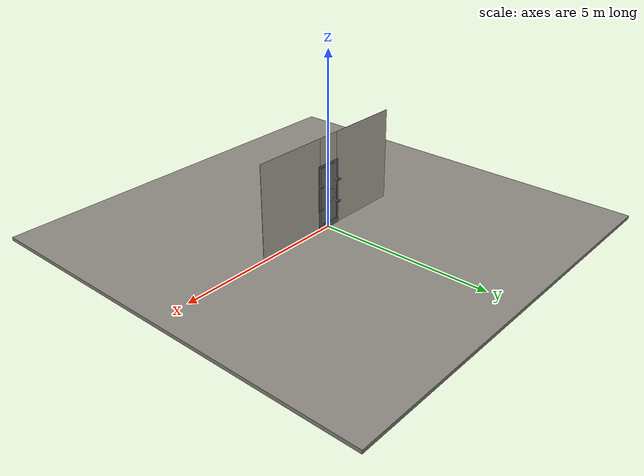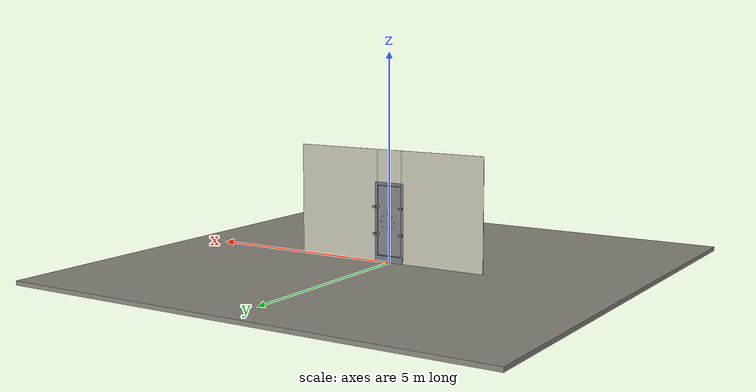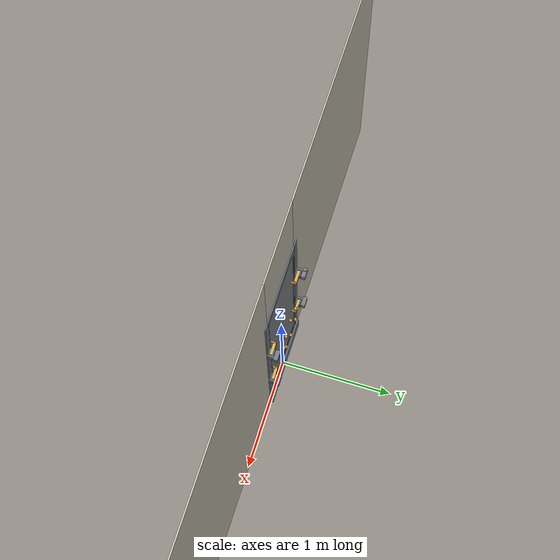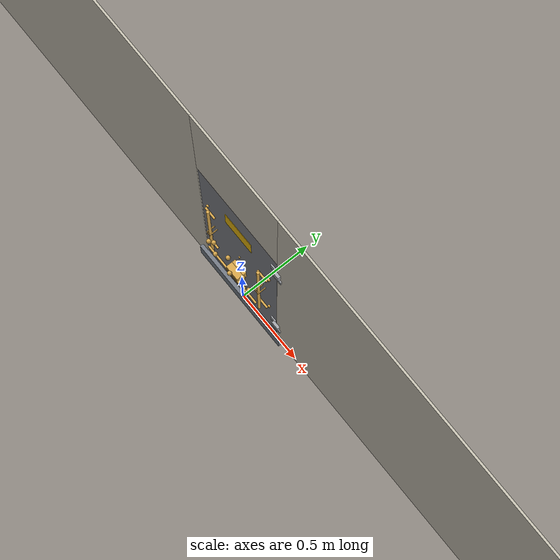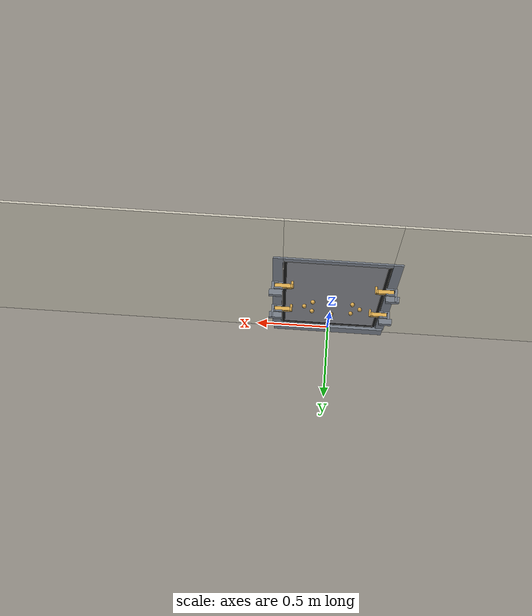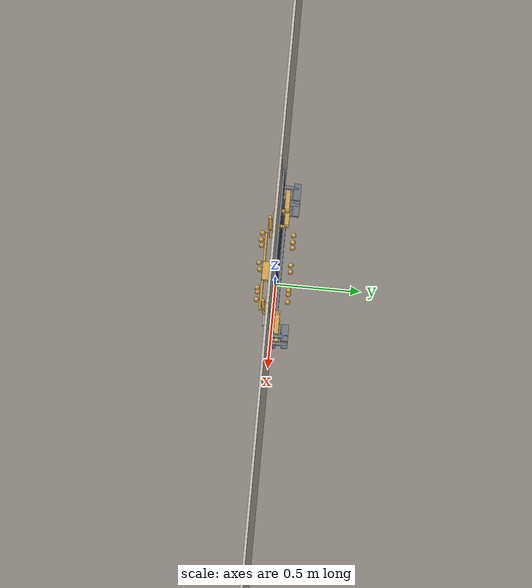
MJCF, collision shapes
<?xml version="1.0" ?>
<mujoco model="db0729_ship_watertight_full">
  <compiler angle="radian" meshdir="../../hardware" texturedir="../../textures" autolimits="true" inertiafromgeom="false"/>
  <option timestep="0.002" integrator="implicitfast" cone="elliptic" impratio="10" noslip_iterations="3">
    <flag multiccd="enable"/>
  </option>
  <size memory="16M"/>
  <default>
    <geom condim="4" solref="0.005 1" solimp="0.95 0.99 0.001"/>
    <joint solreflimit="0.005 1" solimplimit="0.95 0.99 0.001"/>
    <tendon solreflimit="0.005 1"/>
    <equality solref="0.002 1"/>
  </default>
  <visual>
    <headlight ambient="0.4 0.4 0.4" diffuse="0.7 0.7 0.7" specular="0.2 0.2 0.2"/>
    <quality shadowsize="4096"/>
    <map znear="0.01" zfar="60"/>
  </visual>
  <asset>
    <mesh name="hinge_aa6f1f959a" file="hinge_aa6f1f959a.obj"/>
    <mesh name="hinge_jamb_5a3d6f5c54" file="hinge_jamb_5a3d6f5c54.obj"/>
    <mesh name="wheel_9768cee49b" file="wheel_9768cee49b.obj"/>
    <material name="mat_floor" rgba="0.55 0.53 0.5 1" specular="0.2" shininess="0.15" reflectance="0"/>
    <material name="mat_wall" rgba="0.78 0.76 0.7 1" specular="0.2" shininess="0.1" reflectance="0"/>
    <material name="mat_leaf" rgba="0.5 0.51 0.53 1" specular="0.23" shininess="0.45" reflectance="0.02"/>
    <material name="mat_frame" rgba="0.45 0.48 0.52 1" specular="0.32" shininess="0.6" reflectance="0.08"/>
    <material name="mat_gasket" rgba="0.08 0.08 0.08 1" specular="0.2" shininess="0.1" reflectance="0"/>
    <material name="mat_op_brass" rgba="0.85 0.66 0.3 1" specular="0.8" shininess="0.75" reflectance="0.4"/>
    <material name="mat_trim" rgba="0.85 0.66 0.3 1" specular="0.8" shininess="0.75" reflectance="0.4"/>
    <material name="mat_hinge" rgba="0.65 0.66 0.68 1" specular="0.74" shininess="0.5" reflectance="0.36"/>
    <material name="mat_placard" rgba="0.95 0.75 0.05 1" specular="0.2" shininess="0.5" reflectance="0"/>
    <texture name="skybox" type="skybox" builtin="gradient" rgb1="0.6 0.7 0.85" rgb2="0.9 0.92 0.95" width="256" height="256"/>
  </asset>
  <worldbody>
    <light name="sun" pos="1.5 -2.5 4" dir="-0.3 0.5 -0.8" directional="true" diffuse="0.8 0.8 0.8" specular="0.3 0.3 0.3" castshadow="true"/>
    <light name="fill" pos="-1.5 2.5 3" dir="0.3 -0.5 -0.7" directional="true" diffuse="0.35 0.35 0.4" castshadow="false"/>
    <camera name="robot_view" pos="0 -2.228125 1.553875" xyaxes="1 0 0 0 0.26963 0.962964" fovy="52"/>
    <camera name="far_view" pos="0 2.228125 1.553875" xyaxes="-1 0 0 0 -0.26963 0.962964" fovy="52"/>
    <camera name="iso" pos="-1.693375 -1.871625 1.910375" xyaxes="0.741536 -0.670913 0 0.242917 0.268487 0.932151" fovy="46"/>
    <camera name="detail_handle" pos="0.181 -0.884 1.46" xyaxes="0.97561 0.219512 0 -0.070934 0.315262 0.94635" fovy="38"/>
    <geom name="floor" type="box" size="6 6 0.05" pos="0 0 -0.05" material="mat_floor" group="0" contype="1" conaffinity="1" friction="0.8 0.005 0.0001" density="2400"/>
    <geom name="wall_left" type="box" size="1.085 0.006 1.35" pos="-1.415 0 1.35" material="mat_wall" group="0" contype="1" conaffinity="1" friction="0.6 0.005 0.0001" density="800"/>
    <geom name="wall_right" type="box" size="1.085 0.006 1.35" pos="1.415 0 1.35" material="mat_wall" group="0" contype="1" conaffinity="1" friction="0.6 0.005 0.0001" density="800"/>
    <geom name="wall_header" type="box" size="0.33 0.006 0.42" pos="0 0 2.28" material="mat_wall" group="0" contype="1" conaffinity="1" friction="0.6 0.005 0.0001" density="800"/>
    <geom name="flange_l" type="box" size="0.03 0.006 0.915" pos="-0.36 0.01 1.005" material="mat_frame" group="0" contype="1" conaffinity="1" friction="0.6 0.005 0.0001" solref="0.02 1" density="7850"/>
    <geom name="flange_r" type="box" size="0.03 0.006 0.915" pos="0.36 0.01 1.005" material="mat_frame" group="0" contype="1" conaffinity="1" friction="0.6 0.005 0.0001" solref="0.02 1" density="7850"/>
    <geom name="flange_t" type="box" size="0.33 0.006 0.03" pos="0 0.01 1.89" material="mat_frame" group="0" contype="1" conaffinity="1" friction="0.6 0.005 0.0001" solref="0.02 1" density="7850"/>
    <geom name="flange_b" type="box" size="0.33 0.006 0.03" pos="0 0.01 0.12" material="mat_frame" group="0" contype="1" conaffinity="1" friction="0.6 0.005 0.0001" solref="0.02 1" density="7850"/>
    <geom name="coaming" type="box" size="0.38 0.03 0.075" pos="0 0 0.075" material="mat_frame" group="0" contype="1" conaffinity="1" friction="0.6 0.005 0.0001" density="7850"/>
    <geom name="cleat_0" type="box" size="0.0275 0.005 0.025" pos="-0.3515 0.0205 0.675" material="mat_frame" group="0" contype="1" conaffinity="1" friction="0.6 0.005 0.0001" density="7850"/>
    <geom name="cleat_0_outer" type="box" size="0.0275 0.005 0.025" pos="-0.3515 0.0555 0.675" material="mat_frame" group="0" contype="1" conaffinity="1" friction="0.6 0.005 0.0001" density="7850"/>
    <geom name="cleat_0_base" type="box" size="0.0425 0.018 0.025" pos="-0.3665 0.084 0.675" material="mat_frame" group="0" contype="1" conaffinity="1" friction="0.6 0.005 0.0001" density="7850"/>
    <geom name="cleat_0_bridge" type="box" size="0.008 0.041 0.025" pos="-0.387 0.057 0.675" material="mat_frame" group="0" contype="1" conaffinity="1" friction="0.6 0.005 0.0001" density="7850"/>
    <geom name="cleat_1" type="box" size="0.0275 0.005 0.025" pos="0.3535 0.0205 0.675" material="mat_frame" group="0" contype="1" conaffinity="1" friction="0.6 0.005 0.0001" density="7850"/>
    <geom name="cleat_1_outer" type="box" size="0.0275 0.005 0.025" pos="0.3535 0.0555 0.675" material="mat_frame" group="0" contype="1" conaffinity="1" friction="0.6 0.005 0.0001" density="7850"/>
    <geom name="cleat_1_base" type="box" size="0.0425 0.018 0.025" pos="0.3685 0.084 0.675" material="mat_frame" group="0" contype="1" conaffinity="1" friction="0.6 0.005 0.0001" density="7850"/>
    <geom name="cleat_1_bridge" type="box" size="0.008 0.041 0.025" pos="0.389 0.057 0.675" material="mat_frame" group="0" contype="1" conaffinity="1" friction="0.6 0.005 0.0001" density="7850"/>
    <geom name="cleat_2" type="box" size="0.0275 0.005 0.025" pos="-0.3515 0.0205 1.325" material="mat_frame" group="0" contype="1" conaffinity="1" friction="0.6 0.005 0.0001" density="7850"/>
    <geom name="cleat_2_outer" type="box" size="0.0275 0.005 0.025" pos="-0.3515 0.0555 1.325" material="mat_frame" group="0" contype="1" conaffinity="1" friction="0.6 0.005 0.0001" density="7850"/>
    <geom name="cleat_2_base" type="box" size="0.0425 0.018 0.025" pos="-0.3665 0.084 1.325" material="mat_frame" group="0" contype="1" conaffinity="1" friction="0.6 0.005 0.0001" density="7850"/>
    <geom name="cleat_2_bridge" type="box" size="0.008 0.041 0.025" pos="-0.387 0.057 1.325" material="mat_frame" group="0" contype="1" conaffinity="1" friction="0.6 0.005 0.0001" density="7850"/>
    <geom name="cleat_3" type="box" size="0.0275 0.005 0.025" pos="0.3535 0.0205 1.325" material="mat_frame" group="0" contype="1" conaffinity="1" friction="0.6 0.005 0.0001" density="7850"/>
    <geom name="cleat_3_outer" type="box" size="0.0275 0.005 0.025" pos="0.3535 0.0555 1.325" material="mat_frame" group="0" contype="1" conaffinity="1" friction="0.6 0.005 0.0001" density="7850"/>
    <geom name="cleat_3_base" type="box" size="0.0425 0.018 0.025" pos="0.3685 0.084 1.325" material="mat_frame" group="0" contype="1" conaffinity="1" friction="0.6 0.005 0.0001" density="7850"/>
    <geom name="cleat_3_bridge" type="box" size="0.008 0.041 0.025" pos="0.389 0.057 1.325" material="mat_frame" group="0" contype="1" conaffinity="1" friction="0.6 0.005 0.0001" density="7850"/>
    <geom name="hinge_0_jamb" type="mesh" mesh="hinge_jamb_5a3d6f5c54" pos="0.36 -0.024 0.404" quat="0 0 1 0" material="mat_hinge" group="1" contype="0" conaffinity="0" density="7850"/>
    <geom name="hinge_0_jamb_lug" type="box" size="0.01 0.004 0.02" pos="0.36 -0.01 0.317" material="mat_hinge" group="1" contype="0" conaffinity="0" density="7850"/>
    <geom name="hinge_1_jamb" type="mesh" mesh="hinge_jamb_5a3d6f5c54" pos="0.36 -0.024 1.674" quat="0 0 1 0" material="mat_hinge" group="1" contype="0" conaffinity="0" density="7850"/>
    <geom name="hinge_1_jamb_lug" type="box" size="0.01 0.004 0.02" pos="0.36 -0.01 1.587" material="mat_hinge" group="1" contype="0" conaffinity="0" density="7850"/>
    <site name="approach_point" pos="0 -1.5 0" quat="1 0 0 0" size="0.05" rgba="0.2 0.9 0.2 0.5" group="4"/>
    <site name="goal_point" pos="0 1.5 0" quat="1 0 0 0" size="0.05" rgba="0.2 0.9 0.2 0.5" group="4"/>
    <site name="door_plane_center" pos="0 0 1.005" quat="1 0 0 0" size="0.02" rgba="0.2 0.9 0.2 0.5" group="4"/>
    <body name="leaf" pos="0.33 0 0.15">
      <inertial pos="-0.316165 -0.003467 0.838294" mass="76.437703" quat="-0.498035 -0.499893 -0.498779 0.503277" diaginertia="2.794855382 18.050878289 20.823154515"/>
      <joint name="leaf_hinge" type="hinge" axis="0 0 1" pos="0.03 -0.024 0" limited="true" range="0 2.356194" solreflimit="0.02 1" damping="0.104805" frictionloss="13.65219" armature="0.02"/>
      <geom name="leaf_slab" type="box" size="0.325 0.004 0.85" pos="-0.329 0 0.854" material="mat_leaf" group="0" contype="1" conaffinity="1" friction="0.4 0.005 0.0001" density="1"/>
      <geom name="gasket_l" type="box" size="0.01 0.004 0.84" pos="-0.014 0.008 0.854" material="mat_gasket" group="1" contype="0" conaffinity="0" density="1100"/>
      <geom name="gasket_r" type="box" size="0.01 0.004 0.84" pos="-0.644 0.008 0.854" material="mat_gasket" group="1" contype="0" conaffinity="0" density="1100"/>
      <geom name="gasket_b" type="box" size="0.315 0.004 0.01" pos="-0.329 0.008 0.014" material="mat_gasket" group="1" contype="0" conaffinity="0" density="1100"/>
      <geom name="gasket_t" type="box" size="0.315 0.004 0.01" pos="-0.329 0.008 1.694" material="mat_gasket" group="1" contype="0" conaffinity="0" density="1100"/>
      <geom name="wheel_gearbox_mount" type="box" size="0.05 0.0125 0.045" pos="-0.329 -0.0155 0.59" material="mat_op_brass" group="1" contype="0" conaffinity="0" density="7800"/>
      <geom name="wheel_gearbox" type="box" size="0.05 0.022 0.045" pos="-0.329 -0.049 0.59" material="mat_op_brass" group="1" contype="0" conaffinity="0" density="7800"/>
      <geom name="linkage_rod_r_guide_0_leg_n" type="box" size="0.008 0.002 0.02725" pos="-0.5315 -0.03125 0.85" quat="0.5 0.5 -0.5 0.5" material="mat_op_brass" group="1" contype="0" conaffinity="0" density="7800"/>
      <geom name="linkage_rod_r_guide_0_leg_p" type="box" size="0.008 0.002 0.02725" pos="-0.5565 -0.03125 0.85" quat="0.5 0.5 -0.5 0.5" material="mat_op_brass" group="1" contype="0" conaffinity="0" density="7800"/>
      <geom name="linkage_rod_r_guide_0_bridge" type="box" size="0.008 0.0145 0.002" pos="-0.544 -0.0565 0.85" quat="0.5 0.5 -0.5 0.5" material="mat_op_brass" group="1" contype="0" conaffinity="0" density="7800"/>
      <geom name="linkage_rod_l_guide_0_leg_n" type="box" size="0.008 0.002 0.02725" pos="-0.1015 -0.03125 0.85" quat="0.5 0.5 -0.5 0.5" material="mat_op_brass" group="1" contype="0" conaffinity="0" density="7800"/>
      <geom name="linkage_rod_l_guide_0_leg_p" type="box" size="0.008 0.002 0.02725" pos="-0.1265 -0.03125 0.85" quat="0.5 0.5 -0.5 0.5" material="mat_op_brass" group="1" contype="0" conaffinity="0" density="7800"/>
      <geom name="linkage_rod_l_guide_0_bridge" type="box" size="0.008 0.0145 0.002" pos="-0.114 -0.0565 0.85" quat="0.5 0.5 -0.5 0.5" material="mat_op_brass" group="1" contype="0" conaffinity="0" density="7800"/>
      <geom name="linkage_tube" type="cylinder" size="0.007 0.215" pos="-0.329 -0.066 0.59" quat="0.707107 0 0.707107 0" material="mat_op_brass" group="1" contype="0" conaffinity="0" density="7800"/>
      <geom name="hinge_0" type="mesh" mesh="hinge_aa6f1f959a" pos="0.03 -0.024 0.254" quat="0 0 1 0" material="mat_hinge" group="1" contype="0" conaffinity="0" density="7850"/>
      <geom name="hinge_0_lug_foot" type="box" size="0.02 0.0045 0.03" pos="-0.026 -0.0085 0.287" material="mat_hinge" group="1" contype="0" conaffinity="0" density="7850"/>
      <geom name="hinge_0_lug" type="box" size="0.026 0.0095 0.03" pos="0.01 -0.0205 0.287" material="mat_hinge" group="1" contype="0" conaffinity="0" density="7850"/>
      <geom name="hinge_1" type="mesh" mesh="hinge_aa6f1f959a" pos="0.03 -0.024 1.524" quat="0 0 1 0" material="mat_hinge" group="1" contype="0" conaffinity="0" density="7850"/>
      <geom name="hinge_1_lug_foot" type="box" size="0.02 0.0045 0.03" pos="-0.026 -0.0085 1.557" material="mat_hinge" group="1" contype="0" conaffinity="0" density="7850"/>
      <geom name="hinge_1_lug" type="box" size="0.026 0.0095 0.03" pos="0.01 -0.0205 1.557" material="mat_hinge" group="1" contype="0" conaffinity="0" density="7850"/>
      <geom name="warning_placard" type="box" size="0.11 0.001 0.08" pos="-0.329 -0.005 1.36" material="mat_placard" group="2" contype="0" conaffinity="0" density="1000"/>
      <body name="wheel" pos="-0.329 0 0.85">
        <inertial pos="0 0 0" mass="5.986828" quat="0 0 0.707107 0.707107" diaginertia="0.115516198 0.115516198 0.148211455"/>
        <joint name="wheel_hinge" type="hinge" axis="0 1 0" limited="true" range="0 9.4248" damping="0.5" frictionloss="2" armature="0.01"/>
        <geom name="wheel_spindle" type="cylinder" size="0.006 0.012" pos="0 0 0" quat="0.707107 -0.707107 0 0" material="mat_op_brass" group="1" contype="0" conaffinity="0" density="7850"/>
        <geom name="wheel_wheel_n" type="mesh" mesh="wheel_9768cee49b" pos="0 -0.004 0" quat="0 0 -0.707107 0.707107" material="mat_op_brass" group="1" contype="0" conaffinity="0" density="3000"/>
        <geom name="wheel_wheel_col_0_n" type="sphere" size="0.014" pos="0.18 -0.084 0" material="mat_op_brass" group="0" contype="1" conaffinity="1" friction="0.6 0.005 0.0001" density="3000"/>
        <geom name="wheel_wheel_col_1_n" type="sphere" size="0.014" pos="0.127279 -0.084 0.127279" material="mat_op_brass" group="0" contype="1" conaffinity="1" friction="0.6 0.005 0.0001" density="3000"/>
        <geom name="wheel_wheel_col_2_n" type="sphere" size="0.014" pos="0 -0.084 0.18" material="mat_op_brass" group="0" contype="1" conaffinity="1" friction="0.6 0.005 0.0001" density="3000"/>
        <geom name="wheel_wheel_col_3_n" type="sphere" size="0.014" pos="-0.127279 -0.084 0.127279" material="mat_op_brass" group="0" contype="1" conaffinity="1" friction="0.6 0.005 0.0001" density="3000"/>
        <geom name="wheel_wheel_col_4_n" type="sphere" size="0.014" pos="-0.18 -0.084 0" material="mat_op_brass" group="0" contype="1" conaffinity="1" friction="0.6 0.005 0.0001" density="3000"/>
        <geom name="wheel_wheel_col_5_n" type="sphere" size="0.014" pos="-0.127279 -0.084 -0.127279" material="mat_op_brass" group="0" contype="1" conaffinity="1" friction="0.6 0.005 0.0001" density="3000"/>
        <geom name="wheel_wheel_col_6_n" type="sphere" size="0.014" pos="0 -0.084 -0.18" material="mat_op_brass" group="0" contype="1" conaffinity="1" friction="0.6 0.005 0.0001" density="3000"/>
        <geom name="wheel_wheel_col_7_n" type="sphere" size="0.014" pos="0.127279 -0.084 -0.127279" material="mat_op_brass" group="0" contype="1" conaffinity="1" friction="0.6 0.005 0.0001" density="3000"/>
        <geom name="wheel_wheel_p" type="mesh" mesh="wheel_9768cee49b" pos="0 0.004 0" quat="0 0 0.707107 0.707107" material="mat_op_brass" group="1" contype="0" conaffinity="0" density="3000"/>
        <geom name="wheel_wheel_col_0_p" type="sphere" size="0.014" pos="0.18 0.084 0" material="mat_op_brass" group="0" contype="1" conaffinity="1" friction="0.6 0.005 0.0001" density="3000"/>
        <geom name="wheel_wheel_col_1_p" type="sphere" size="0.014" pos="0.127279 0.084 0.127279" material="mat_op_brass" group="0" contype="1" conaffinity="1" friction="0.6 0.005 0.0001" density="3000"/>
        <geom name="wheel_wheel_col_2_p" type="sphere" size="0.014" pos="0 0.084 0.18" material="mat_op_brass" group="0" contype="1" conaffinity="1" friction="0.6 0.005 0.0001" density="3000"/>
        <geom name="wheel_wheel_col_3_p" type="sphere" size="0.014" pos="-0.127279 0.084 0.127279" material="mat_op_brass" group="0" contype="1" conaffinity="1" friction="0.6 0.005 0.0001" density="3000"/>
        <geom name="wheel_wheel_col_4_p" type="sphere" size="0.014" pos="-0.18 0.084 0" material="mat_op_brass" group="0" contype="1" conaffinity="1" friction="0.6 0.005 0.0001" density="3000"/>
        <geom name="wheel_wheel_col_5_p" type="sphere" size="0.014" pos="-0.127279 0.084 -0.127279" material="mat_op_brass" group="0" contype="1" conaffinity="1" friction="0.6 0.005 0.0001" density="3000"/>
        <geom name="wheel_wheel_col_6_p" type="sphere" size="0.014" pos="0 0.084 -0.18" material="mat_op_brass" group="0" contype="1" conaffinity="1" friction="0.6 0.005 0.0001" density="3000"/>
        <geom name="wheel_wheel_col_7_p" type="sphere" size="0.014" pos="0.127279 0.084 -0.127279" material="mat_op_brass" group="0" contype="1" conaffinity="1" friction="0.6 0.005 0.0001" density="3000"/>
        <site name="wheel_grip_n" pos="0 -0.084 0.18" quat="1 0 0 0" size="0.012" rgba="0.2 0.9 0.2 0.5" group="4"/>
        <site name="wheel_grip_p" pos="0 0.084 0.18" quat="1 0 0 0" size="0.012" rgba="0.2 0.9 0.2 0.5" group="4"/>
      </body>
      <body name="dog_0" pos="-0.594 0 0.525">
        <inertial pos="-0.038649 0.031741 0" mass="1.298802" quat="0.162341 0 0 0.986735" diaginertia="0.000409219 0.002229409 0.002357588"/>
        <joint name="dog_0_hinge" type="hinge" axis="0 -1 0" limited="true" range="0 1.5708" damping="0.5" frictionloss="0.5" armature="0.005"/>
        <geom name="dog_0_rod_crank" type="cylinder" size="0.007 0.04" pos="0.04 -0.024 0" quat="0.707107 0 0.707107 0" material="mat_op_brass" group="1" contype="0" conaffinity="0" density="7800"/>
        <geom name="dog_0_wedge" type="box" size="0.05 0.012 0.02" pos="-0.06 0.038 0" material="mat_op_brass" group="0" contype="1" conaffinity="1" friction="0.6 0.005 0.0001" density="7800"/>
        <geom name="dog_0_shaft" type="cylinder" size="0.008 0.033" pos="0 0.017 0" quat="0.707107 -0.707107 0 0" material="mat_op_brass" group="1" contype="0" conaffinity="0" density="7800"/>
        <geom name="dog_0_crank" type="box" size="0.026 0.012 0.018" pos="-0.026 0.038 0" material="mat_op_brass" group="1" contype="0" conaffinity="0" density="7800"/>
      </body>
      <body name="dog_1" pos="-0.064 0 0.525">
        <inertial pos="0.038649 0.031741 0" mass="1.298802" quat="-0.162341 0 0 0.986735" diaginertia="0.000409219 0.002229409 0.002357588"/>
        <joint name="dog_1_hinge" type="hinge" axis="0 1 0" limited="true" range="0 1.5708" damping="0.5" frictionloss="0.5" armature="0.005"/>
        <geom name="dog_1_rod_crank" type="cylinder" size="0.007 0.04" pos="-0.04 -0.024 0" quat="0.707107 0 0.707107 0" material="mat_op_brass" group="1" contype="0" conaffinity="0" density="7800"/>
        <geom name="dog_1_wedge" type="box" size="0.05 0.012 0.02" pos="0.06 0.038 0" material="mat_op_brass" group="0" contype="1" conaffinity="1" friction="0.6 0.005 0.0001" density="7800"/>
        <geom name="dog_1_shaft" type="cylinder" size="0.008 0.033" pos="0 0.017 0" quat="0.707107 -0.707107 0 0" material="mat_op_brass" group="1" contype="0" conaffinity="0" density="7800"/>
        <geom name="dog_1_crank" type="box" size="0.026 0.012 0.018" pos="0.026 0.038 0" material="mat_op_brass" group="1" contype="0" conaffinity="0" density="7800"/>
      </body>
      <body name="dog_2" pos="-0.594 0 1.175">
        <inertial pos="-0.038649 0.031741 0" mass="1.298802" quat="0.162341 0 0 0.986735" diaginertia="0.000409219 0.002229409 0.002357588"/>
        <joint name="dog_2_hinge" type="hinge" axis="0 -1 0" limited="true" range="0 1.5708" damping="0.5" frictionloss="0.5" armature="0.005"/>
        <geom name="dog_2_rod_crank" type="cylinder" size="0.007 0.04" pos="0.04 -0.024 0" quat="0.707107 0 0.707107 0" material="mat_op_brass" group="1" contype="0" conaffinity="0" density="7800"/>
        <geom name="dog_2_wedge" type="box" size="0.05 0.012 0.02" pos="-0.06 0.038 0" material="mat_op_brass" group="0" contype="1" conaffinity="1" friction="0.6 0.005 0.0001" density="7800"/>
        <geom name="dog_2_shaft" type="cylinder" size="0.008 0.033" pos="0 0.017 0" quat="0.707107 -0.707107 0 0" material="mat_op_brass" group="1" contype="0" conaffinity="0" density="7800"/>
        <geom name="dog_2_crank" type="box" size="0.026 0.012 0.018" pos="-0.026 0.038 0" material="mat_op_brass" group="1" contype="0" conaffinity="0" density="7800"/>
      </body>
      <body name="dog_3" pos="-0.064 0 1.175">
        <inertial pos="0.038649 0.031741 0" mass="1.298802" quat="-0.162341 0 0 0.986735" diaginertia="0.000409219 0.002229409 0.002357588"/>
        <joint name="dog_3_hinge" type="hinge" axis="0 1 0" limited="true" range="0 1.5708" damping="0.5" frictionloss="0.5" armature="0.005"/>
        <geom name="dog_3_rod_crank" type="cylinder" size="0.007 0.04" pos="-0.04 -0.024 0" quat="0.707107 0 0.707107 0" material="mat_op_brass" group="1" contype="0" conaffinity="0" density="7800"/>
        <geom name="dog_3_wedge" type="box" size="0.05 0.012 0.02" pos="0.06 0.038 0" material="mat_op_brass" group="0" contype="1" conaffinity="1" friction="0.6 0.005 0.0001" density="7800"/>
        <geom name="dog_3_shaft" type="cylinder" size="0.008 0.033" pos="0 0.017 0" quat="0.707107 -0.707107 0 0" material="mat_op_brass" group="1" contype="0" conaffinity="0" density="7800"/>
        <geom name="dog_3_crank" type="box" size="0.026 0.012 0.018" pos="0.026 0.038 0" material="mat_op_brass" group="1" contype="0" conaffinity="0" density="7800"/>
      </body>
      <body name="linkage_rod_r" pos="-0.544 0 0">
        <inertial pos="0 -0.044 0.85" mass="1.68713" quat="0.707107 0 0.707107 0" diaginertia="0.000068329 0.10161342 0.10161342"/>
        <joint name="linkage_rod_r_slide" type="slide" axis="0 0 1" limited="true" range="0 0.05" damping="2" frictionloss="0.5" armature="0.05"/>
        <geom name="linkage_rod_r_geom" type="cylinder" size="0.009 0.425" pos="0 -0.044 0.85" material="mat_op_brass" group="1" contype="0" conaffinity="0" density="7800"/>
      </body>
      <body name="linkage_rod_l" pos="-0.114 0 0">
        <inertial pos="0 -0.044 0.85" mass="1.68713" quat="0.707107 0 0.707107 0" diaginertia="0.000068329 0.10161342 0.10161342"/>
        <joint name="linkage_rod_l_slide" type="slide" axis="0 0 1" limited="true" range="0 0.05" damping="2" frictionloss="0.5" armature="0.05"/>
        <geom name="linkage_rod_l_geom" type="cylinder" size="0.009 0.425" pos="0 -0.044 0.85" material="mat_op_brass" group="1" contype="0" conaffinity="0" density="7800"/>
      </body>
    </body>
  </worldbody>
  <equality>
    <joint name="wheel_dog_0" joint1="dog_0_hinge" joint2="wheel_hinge" polycoef="0 0.166667 0 0 0" active="true"/>
    <joint name="wheel_dog_1" joint1="dog_1_hinge" joint2="wheel_hinge" polycoef="0 0.166667 0 0 0" active="true"/>
    <joint name="wheel_dog_2" joint1="dog_2_hinge" joint2="wheel_hinge" polycoef="0 0.166667 0 0 0" active="true"/>
    <joint name="wheel_dog_3" joint1="dog_3_hinge" joint2="wheel_hinge" polycoef="0 0.166667 0 0 0" active="true"/>
    <joint name="wheel_rod_r" joint1="linkage_rod_r_slide" joint2="wheel_hinge" polycoef="0 0.005305 0 0 0" active="true"/>
    <joint name="wheel_rod_l" joint1="linkage_rod_l_slide" joint2="wheel_hinge" polycoef="0 0.005305 0 0 0" active="true"/>
  </equality>
  <sensor>
    <jointpos name="leaf_hinge_pos" joint="leaf_hinge"/>
    <jointvel name="leaf_hinge_vel" joint="leaf_hinge"/>
    <jointpos name="wheel_hinge_pos" joint="wheel_hinge"/>
    <jointvel name="wheel_hinge_vel" joint="wheel_hinge"/>
    <jointpos name="dog_0_hinge_pos" joint="dog_0_hinge"/>
    <jointvel name="dog_0_hinge_vel" joint="dog_0_hinge"/>
    <jointpos name="dog_1_hinge_pos" joint="dog_1_hinge"/>
    <jointvel name="dog_1_hinge_vel" joint="dog_1_hinge"/>
    <jointpos name="dog_2_hinge_pos" joint="dog_2_hinge"/>
    <jointvel name="dog_2_hinge_vel" joint="dog_2_hinge"/>
    <jointpos name="dog_3_hinge_pos" joint="dog_3_hinge"/>
    <jointvel name="dog_3_hinge_vel" joint="dog_3_hinge"/>
  </sensor>
</mujoco>
